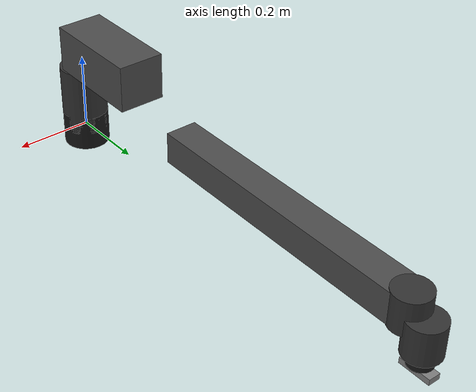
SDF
<?xml version="1.0"?>
<sdf version="1.6">
  <model name="ur5_arm">
    <static>false</static>

    <!-- Base Link -->
    <link name="base_link">
      <pose>0 0 0 0 0 0</pose>
      <inertial>
        <mass>4.0</mass>
        <inertia>
          <ixx>0.004433</ixx>
          <ixy>0.000000</ixy>
          <ixz>0.000000</ixz>
          <iyy>0.004433</iyy>
          <iyz>0.000000</iyz>
          <izz>0.007200</izz>
        </inertia>
      </inertial>
      <collision name="base_collision">
        <geometry>
          <cylinder>
            <radius>0.060</radius>
            <length>0.092</length>
          </cylinder>
        </geometry>
      </collision>
      <visual name="base_visual">
        <geometry>
          <cylinder>
            <radius>0.060</radius>
            <length>0.092</length>
          </cylinder>
        </geometry>
        <material>
          <ambient>0.1 0.1 0.1 1</ambient>
          <diffuse>0.1 0.1 0.1 1</diffuse>
        </material>
      </visual>
    </link>

    <!-- Shoulder Link -->
    <link name="shoulder_link">
      <pose>0 0 0.089 0 0 0</pose>
      <inertial>
        <mass>3.7</mass>
        <inertia>
          <ixx>0.010267</ixx>
          <ixy>0.000000</ixy>
          <ixz>0.000000</ixz>
          <iyy>0.010267</iyy>
          <iyz>0.000000</iyz>
          <izz>0.006660</izz>
        </inertia>
      </inertial>
      <collision name="shoulder_collision">
        <geometry>
          <cylinder>
            <radius>0.060</radius>
            <length>0.178</length>
          </cylinder>
        </geometry>
      </collision>
      <visual name="shoulder_visual">
        <geometry>
          <cylinder>
            <radius>0.060</radius>
            <length>0.178</length>
          </cylinder>
        </geometry>
        <material>
          <ambient>0.2 0.2 0.2 1</ambient>
          <diffuse>0.2 0.2 0.2 1</diffuse>
        </material>
      </visual>
    </link>

    <joint name="shoulder_pan_joint" type="revolute">
      <parent>base_link</parent>
      <child>shoulder_link</child>
      <axis>
        <xyz>0 0 1</xyz>
        <limit>
          <lower>-6.283185</lower>
          <upper>6.283185</upper>
          <effort>150.0</effort>
          <velocity>3.15</velocity>
        </limit>
        <dynamics>
          <damping>0.0</damping>
          <friction>0.0</friction>
        </dynamics>
      </axis>
    </joint>

    <!-- Upper Arm Link -->
    <link name="upper_arm_link">
      <pose>0 0.136 0.245 0 0 0</pose>
      <inertial>
        <mass>8.393</mass>
        <inertia>
          <ixx>0.226890</ixx>
          <ixy>0.000000</ixy>
          <ixz>0.000000</ixz>
          <iyy>0.226890</iyy>
          <iyz>0.000000</iyz>
          <izz>0.015107</izz>
        </inertia>
      </inertial>
      <collision name="upper_arm_collision">
        <geometry>
          <box>
            <size>0.120 0.272 0.120</size>
          </box>
        </geometry>
      </collision>
      <visual name="upper_arm_visual">
        <geometry>
          <box>
            <size>0.120 0.272 0.120</size>
          </box>
        </geometry>
        <material>
          <ambient>0.3 0.3 0.3 1</ambient>
          <diffuse>0.3 0.3 0.3 1</diffuse>
        </material>
      </visual>
    </link>

    <joint name="shoulder_lift_joint" type="revolute">
      <parent>shoulder_link</parent>
      <child>upper_arm_link</child>
      <axis>
        <xyz>0 1 0</xyz>
        <limit>
          <lower>-6.283185</lower>
          <upper>6.283185</upper>
          <effort>150.0</effort>
          <velocity>3.15</velocity>
        </limit>
      </axis>
    </joint>

    <!-- Forearm Link -->
    <link name="forearm_link">
      <pose>0 0.793 0.156 0 0 0</pose>
      <inertial>
        <mass>2.275</mass>
        <inertia>
          <ixx>0.049443</ixx>
          <ixy>0.000000</ixy>
          <ixz>0.000000</ixz>
          <iyy>0.049443</iyy>
          <iyz>0.000000</iyz>
          <izz>0.004095</izz>
        </inertia>
      </inertial>
      <collision name="forearm_collision">
        <geometry>
          <box>
            <size>0.080 0.730 0.080</size>
          </box>
        </geometry>
      </collision>
      <visual name="forearm_visual">
        <geometry>
          <box>
            <size>0.080 0.730 0.080</size>
          </box>
        </geometry>
        <material>
          <ambient>0.3 0.3 0.3 1</ambient>
          <diffuse>0.3 0.3 0.3 1</diffuse>
        </material>
      </visual>
    </link>

    <joint name="elbow_joint" type="revolute">
      <parent>upper_arm_link</parent>
      <child>forearm_link</child>
      <axis>
        <xyz>0 1 0</xyz>
        <limit>
          <lower>-3.14159</lower>
          <upper>3.14159</upper>
          <effort>150.0</effort>
          <velocity>3.15</velocity>
        </limit>
      </axis>
    </joint>

    <!-- Wrist 1 Link -->
    <link name="wrist_1_link">
      <pose>0 1.158 0.156 0 0 0</pose>
      <inertial>
        <mass>1.219</mass>
        <inertia>
          <ixx>0.111070</ixx>
          <ixy>0.000000</ixy>
          <ixz>0.000000</ixz>
          <iyy>0.111070</iyy>
          <iyz>0.000000</iyz>
          <izz>0.219420</izz>
        </inertia>
      </inertial>
      <collision name="wrist_1_collision">
        <geometry>
          <cylinder>
            <radius>0.045</radius>
            <length>0.086</length>
          </cylinder>
        </geometry>
      </collision>
      <visual name="wrist_1_visual">
        <geometry>
          <cylinder>
            <radius>0.045</radius>
            <length>0.086</length>
          </cylinder>
        </geometry>
        <material>
          <ambient>0.2 0.2 0.2 1</ambient>
          <diffuse>0.2 0.2 0.2 1</diffuse>
        </material>
      </visual>
    </link>

    <joint name="wrist_1_joint" type="revolute">
      <parent>forearm_link</parent>
      <child>wrist_1_link</child>
      <axis>
        <xyz>0 1 0</xyz>
        <limit>
          <lower>-6.283185</lower>
          <upper>6.283185</upper>
          <effort>28.0</effort>
          <velocity>6.28</velocity>
        </limit>
      </axis>
    </joint>

    <!-- Wrist 2 Link -->
    <link name="wrist_2_link">
      <pose>0 1.201 0.112 0 0 0</pose>
      <inertial>
        <mass>1.219</mass>
        <inertia>
          <ixx>0.111070</ixx>
          <ixy>0.000000</ixy>
          <ixz>0.000000</ixz>
          <iyy>0.111070</iyy>
          <iyz>0.000000</iyz>
          <izz>0.219420</izz>
        </inertia>
      </inertial>
      <collision name="wrist_2_collision">
        <geometry>
          <cylinder>
            <radius>0.045</radius>
            <length>0.086</length>
          </cylinder>
        </geometry>
      </collision>
      <visual name="wrist_2_visual">
        <geometry>
          <cylinder>
            <radius>0.045</radius>
            <length>0.086</length>
          </cylinder>
        </geometry>
        <material>
          <ambient>0.2 0.2 0.2 1</ambient>
          <diffuse>0.2 0.2 0.2 1</diffuse>
        </material>
      </visual>
    </link>

    <joint name="wrist_2_joint" type="revolute">
      <parent>wrist_1_link</parent>
      <child>wrist_2_link</child>
      <axis>
        <xyz>0 0 1</xyz>
        <limit>
          <lower>-6.283185</lower>
          <upper>6.283185</upper>
          <effort>28.0</effort>
          <velocity>6.28</velocity>
        </limit>
      </axis>
    </joint>

    <!-- Wrist 3 Link -->
    <link name="wrist_3_link">
      <pose>0 1.201 0.069 0 0 0</pose>
      <inertial>
        <mass>0.1879</mass>
        <inertia>
          <ixx>0.017136</ixx>
          <ixy>0.000000</ixy>
          <ixz>0.000000</ixz>
          <iyy>0.017136</iyy>
          <iyz>0.000000</iyz>
          <izz>0.033822</izz>
        </inertia>
      </inertial>
      <collision name="wrist_3_collision">
        <geometry>
          <cylinder>
            <radius>0.030</radius>
            <length>0.058</length>
          </cylinder>
        </geometry>
      </collision>
      <visual name="wrist_3_visual">
        <geometry>
          <cylinder>
            <radius>0.030</radius>
            <length>0.058</length>
          </cylinder>
        </geometry>
        <material>
          <ambient>0.1 0.1 0.1 1</ambient>
          <diffuse>0.1 0.1 0.1 1</diffuse>
        </material>
      </visual>
    </link>

    <joint name="wrist_3_joint" type="revolute">
      <parent>wrist_2_link</parent>
      <child>wrist_3_link</child>
      <axis>
        <xyz>0 1 0</xyz>
        <limit>
          <lower>-6.283185</lower>
          <upper>6.283185</upper>
          <effort>28.0</effort>
          <velocity>6.28</velocity>
        </limit>
      </axis>
    </joint>

    <!-- Force/Torque Sensor Link -->
    <link name="ft_sensor_link">
      <pose>0 1.201 0.055 0 0 0</pose>
      <inertial>
        <mass>0.05</mass>
        <inertia>
          <ixx>0.00001</ixx>
          <ixy>0</ixy>
          <ixz>0</ixz>
          <iyy>0.00001</iyy>
          <iyz>0</iyz>
          <izz>0.00001</izz>
        </inertia>
      </inertial>
      <collision name="ft_collision">
        <geometry>
          <cylinder>
            <radius>0.025</radius>
            <length>0.02</length>
          </cylinder>
        </geometry>
      </collision>
      <visual name="ft_visual">
        <geometry>
          <cylinder>
            <radius>0.025</radius>
            <length>0.02</length>
          </cylinder>
        </geometry>
        <material>
          <ambient>0.2 0.8 0.2 1</ambient>
          <diffuse>0.2 0.8 0.2 1</diffuse>
        </material>
      </visual>
      <!-- Force/Torque Sensor -->
      <sensor name="ft_sensor" type="force_torque">
        <always_on>true</always_on>
        <update_rate>100</update_rate>
        <visualize>true</visualize>
        <force_torque>
          <frame>sensor</frame>
          <measure_direction>child_to_parent</measure_direction>
        </force_torque>
        <plugin name="ft_sensor_plugin" filename="libgazebo_ros_ft_sensor.so">
          <ros>
            <namespace>/ur5</namespace>
            <remapping>~/out:=ft_sensor/data</remapping>
          </ros>
          <frame_name>ft_sensor_link</frame_name>
        </plugin>
      </sensor>
    </link>

    <joint name="ft_sensor_joint" type="fixed">
      <parent>wrist_3_link</parent>
      <child>ft_sensor_link</child>
    </joint>

    <!-- End Effector / Tool Link -->
    <link name="tool0">
      <pose>0 1.201 0.040 0 0 0</pose>
      <inertial>
        <mass>0.1</mass>
        <inertia>
          <ixx>0.0001</ixx>
          <ixy>0</ixy>
          <ixz>0</ixz>
          <iyy>0.0001</iyy>
          <iyz>0</iyz>
          <izz>0.0001</izz>
        </inertia>
      </inertial>
      <visual name="tool0_visual">
        <geometry>
          <box>
            <size>0.02 0.02 0.02</size>
          </box>
        </geometry>
        <material>
          <ambient>0.8 0.2 0.2 1</ambient>
          <diffuse>0.8 0.2 0.2 1</diffuse>
        </material>
      </visual>
    </link>

    <joint name="tool0_joint" type="fixed">
      <parent>ft_sensor_link</parent>
      <child>tool0</child>
    </joint>

    <!-- Gripper - Left Finger -->
    <link name="gripper_left">
      <pose>0 1.201 0.025 0 0 0</pose>
      <inertial>
        <mass>0.05</mass>
        <inertia>
          <ixx>0.00001</ixx>
          <ixy>0</ixy>
          <ixz>0</ixz>
          <iyy>0.00001</iyy>
          <iyz>0</iyz>
          <izz>0.00001</izz>
        </inertia>
      </inertial>
      <collision name="collision">
        <geometry>
          <box>
            <size>0.03 0.08 0.015</size>
          </box>
        </geometry>
      </collision>
      <visual name="visual">
        <geometry>
          <box>
            <size>0.03 0.08 0.015</size>
          </box>
        </geometry>
        <material>
          <ambient>0.5 0.5 0.5 1</ambient>
          <diffuse>0.5 0.5 0.5 1</diffuse>
        </material>
      </visual>
    </link>

    <joint name="gripper_left_joint" type="prismatic">
      <parent>tool0</parent>
      <child>gripper_left</child>
      <axis>
        <xyz>1 0 0</xyz>
        <limit>
          <lower>0.0</lower>
          <upper>0.04</upper>
          <effort>10.0</effort>
          <velocity>0.1</velocity>
        </limit>
      </axis>
    </joint>

    <!-- Gripper - Right Finger -->
    <link name="gripper_right">
      <pose>0 1.201 0.025 0 0 0</pose>
      <inertial>
        <mass>0.05</mass>
        <inertia>
          <ixx>0.00001</ixx>
          <ixy>0</ixy>
          <ixz>0</ixz>
          <iyy>0.00001</iyy>
          <iyz>0</iyz>
          <izz>0.00001</izz>
        </inertia>
      </inertial>
      <collision name="collision">
        <geometry>
          <box>
            <size>0.03 0.08 0.015</size>
          </box>
        </geometry>
      </collision>
      <visual name="visual">
        <geometry>
          <box>
            <size>0.03 0.08 0.015</size>
          </box>
        </geometry>
        <material>
          <ambient>0.5 0.5 0.5 1</ambient>
          <diffuse>0.5 0.5 0.5 1</diffuse>
        </material>
      </visual>
    </link>

    <joint name="gripper_right_joint" type="prismatic">
      <parent>tool0</parent>
      <child>gripper_right</child>
      <axis>
        <xyz>-1 0 0</xyz>
        <limit>
          <lower>0.0</lower>
          <upper>0.04</upper>
          <effort>10.0</effort>
          <velocity>0.1</velocity>
        </limit>
      </axis>
    </joint>

    <!-- Joint State Publisher Plugin -->
    <plugin name="joint_state_publisher" filename="libgazebo_ros_joint_state_publisher.so">
      <ros>
        <namespace>/ur5</namespace>
        <remapping>~/out:=joint_states</remapping>
      </ros>
      <update_rate>50</update_rate>
      <joint_name>shoulder_pan_joint</joint_name>
      <joint_name>shoulder_lift_joint</joint_name>
      <joint_name>elbow_joint</joint_name>
      <joint_name>wrist_1_joint</joint_name>
      <joint_name>wrist_2_joint</joint_name>
      <joint_name>wrist_3_joint</joint_name>
      <joint_name>ft_sensor_joint</joint_name>
      <joint_name>gripper_left_joint</joint_name>
      <joint_name>gripper_right_joint</joint_name>
    </plugin>

    <!-- Joint Trajectory Controller Plugin -->
    <plugin name="joint_trajectory_controller" filename="libgazebo_ros_joint_pose_trajectory.so">
      <ros>
        <namespace>/ur5</namespace>
      </ros>
      <update_rate>100</update_rate>
    </plugin>

  </model>
</sdf>
